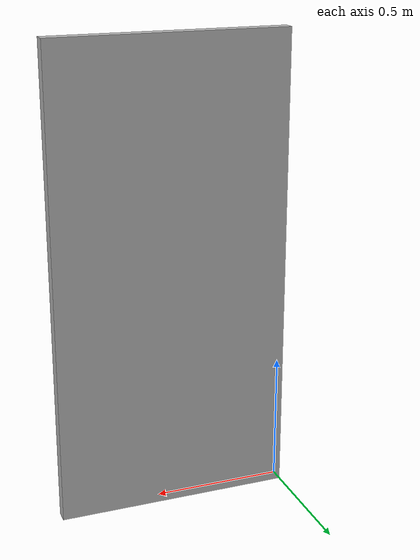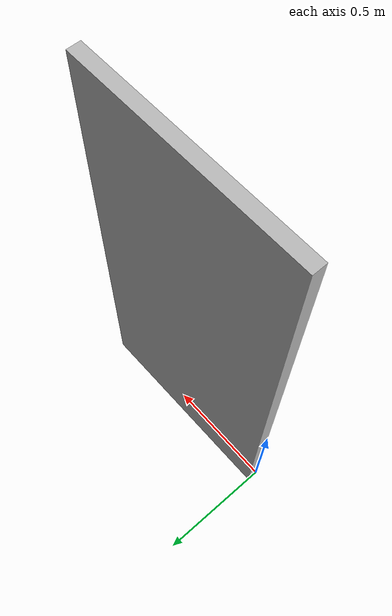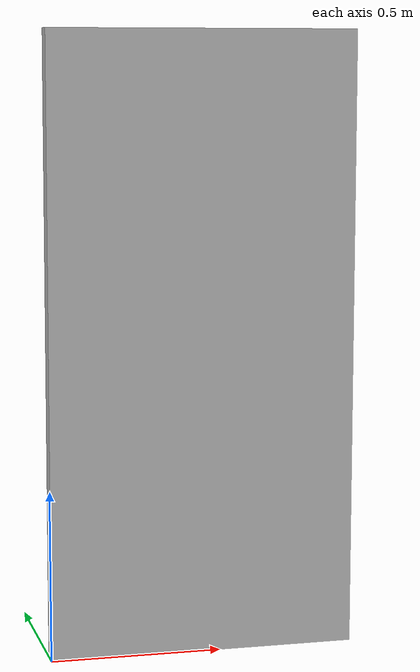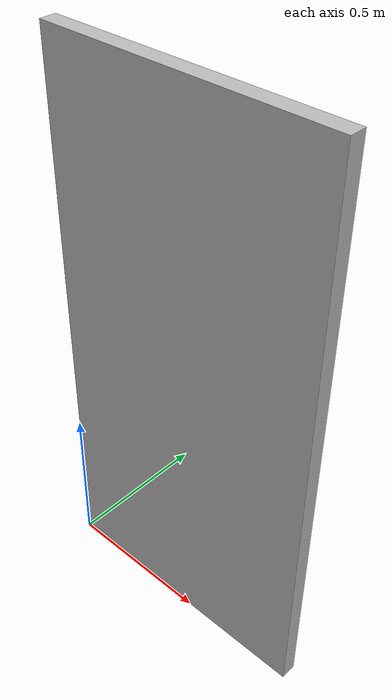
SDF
<?xml version="1.0" ?>
<sdf version="1.4">
  <model name="83B1_wall">
    <static>true</static>
    <link name="link">
      <pose>0.45 0.025 0.9 0 0 0</pose>
      <collision name="collision">
        <geometry>
          <box>
	    <size>0.9 0.05 1.8</size>
          </box>
        </geometry>
        <surface>
          <contact>
            <collide_without_contact>true</collide_without_contact>
            <collide_without_contact_bitmask>2</collide_without_contact_bitmask>
          </contact>
        </surface>

      </collision>
      <visual name="visual">
        <cast_shadows>false</cast_shadows>
        <geometry>
          <box>
	    <size>0.9 0.05 1.8</size>
          </box>
        </geometry>
        <material>
          <script>
            <uri>model://83B1_wall/materials/scripts</uri>
            <uri>model://83B1_wall/materials/textures</uri>
            <name>jsk/83B1_wall</name>
          </script>
        </material>
      </visual>
      <sensor name="mud_contact" type="contact">
        <always_on>true</always_on>
        <update_rate>1000</update_rate>
        <contact>
          <collision>collision</collision>
        </contact>
      </sensor>
    </link>
    <plugin name="gazebo_mud" filename="libMudPlugin.so">
      <contact_sensor_name>link/mud_contact</contact_sensor_name>
      <stiffness>0.0</stiffness>
      <damping>40.0</damping>
      <contact_surface_bitmask>2</contact_surface_bitmask>
      <link_name>drill::link</link_name>
    </plugin>
  </model>
</sdf>
